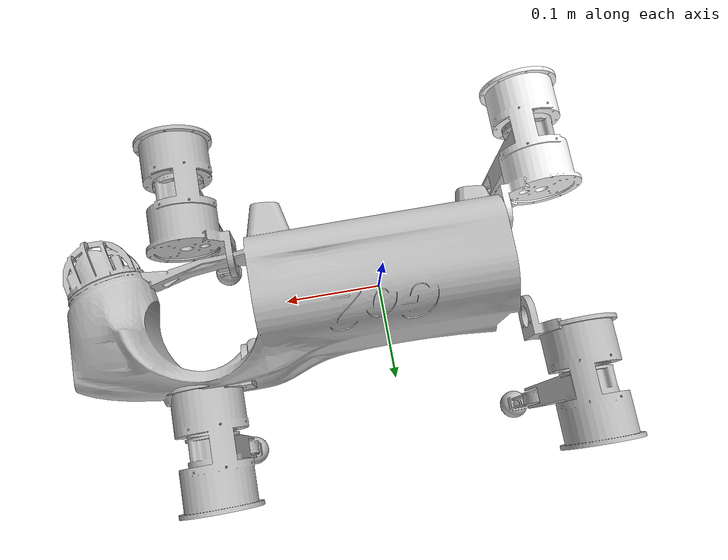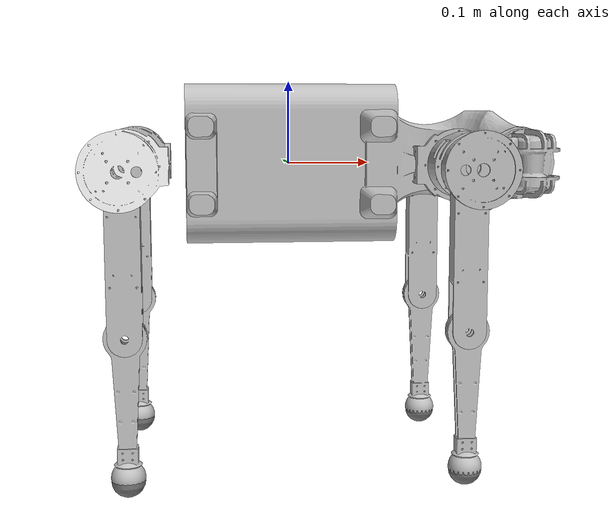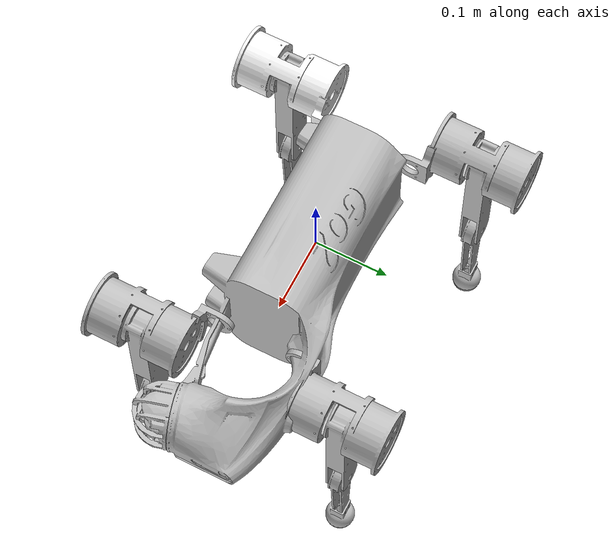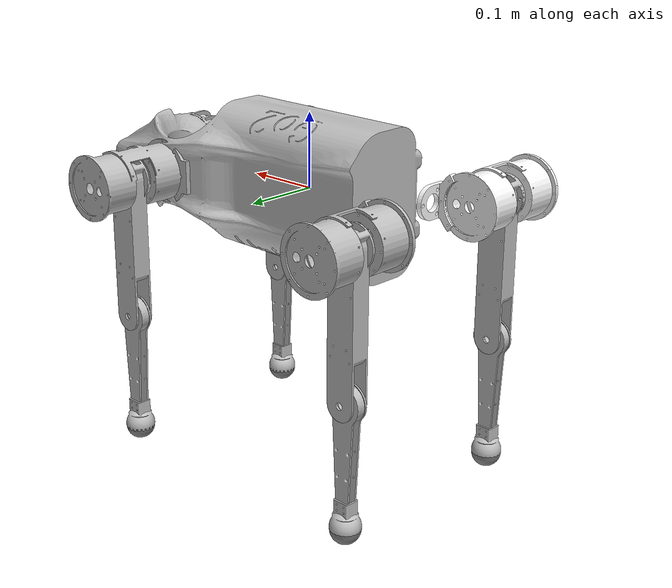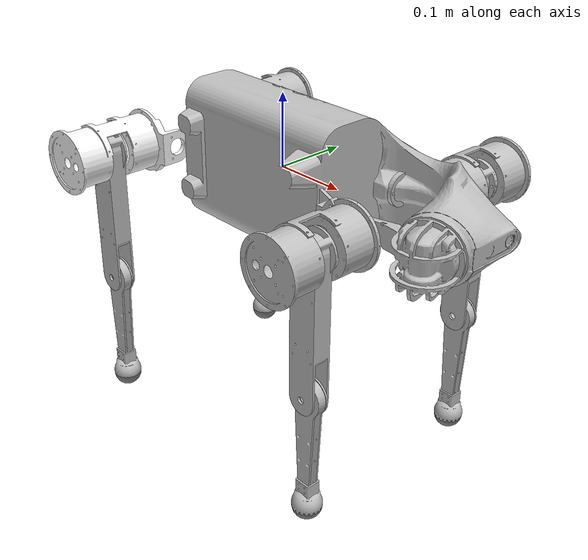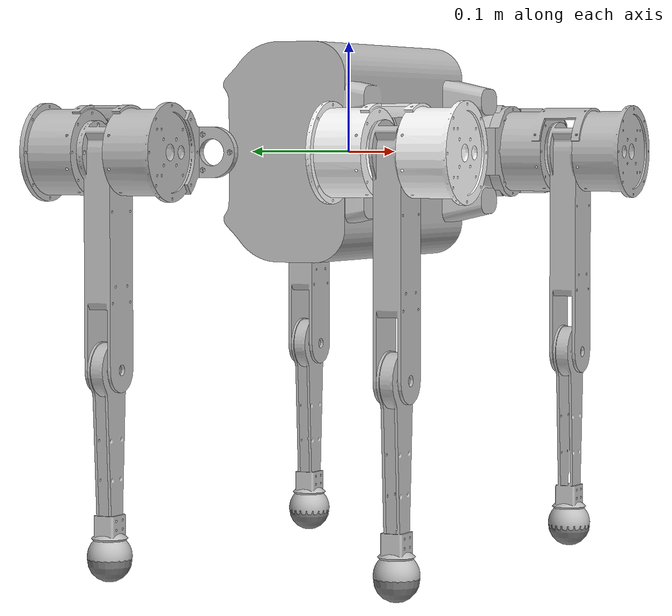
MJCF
<mujoco model="m2_description">
  <compiler angle="radian"/>
  <asset>
    <mesh name="BASE" file="/home/meshin/dev/quadruped/xterra/quadruped_locomotion/src/robots/m2_description/meshes/BASE.STL"/>
    <mesh name="RF_HIP" file="/home/meshin/dev/quadruped/xterra/quadruped_locomotion/src/robots/m2_description/meshes/RF_HIP.STL"/>
    <mesh name="RF_THIGH" file="/home/meshin/dev/quadruped/xterra/quadruped_locomotion/src/robots/m2_description/meshes/RF_THIGH.STL"/>
    <mesh name="RF_SHANK" file="/home/meshin/dev/quadruped/xterra/quadruped_locomotion/src/robots/m2_description/meshes/RF_SHANK.STL"/>
    <mesh name="LF_HIP" file="/home/meshin/dev/quadruped/xterra/quadruped_locomotion/src/robots/m2_description/meshes/LF_HIP.STL"/>
    <mesh name="LF_THIGH" file="/home/meshin/dev/quadruped/xterra/quadruped_locomotion/src/robots/m2_description/meshes/LF_THIGH.STL"/>
    <mesh name="LF_SHANK" file="/home/meshin/dev/quadruped/xterra/quadruped_locomotion/src/robots/m2_description/meshes/LF_SHANK.STL"/>
    <mesh name="RH_HIP" file="/home/meshin/dev/quadruped/xterra/quadruped_locomotion/src/robots/m2_description/meshes/RH_HIP.STL"/>
    <mesh name="RH_THIGH" file="/home/meshin/dev/quadruped/xterra/quadruped_locomotion/src/robots/m2_description/meshes/RH_THIGH.STL"/>
    <mesh name="RH_SHANK" file="/home/meshin/dev/quadruped/xterra/quadruped_locomotion/src/robots/m2_description/meshes/RH_SHANK.STL"/>
    <mesh name="LH_HIP" file="/home/meshin/dev/quadruped/xterra/quadruped_locomotion/src/robots/m2_description/meshes/LH_HIP.STL"/>
    <mesh name="LH_THIGH" file="/home/meshin/dev/quadruped/xterra/quadruped_locomotion/src/robots/m2_description/meshes/LH_THIGH.STL"/>
    <mesh name="LH_SHANK" file="/home/meshin/dev/quadruped/xterra/quadruped_locomotion/src/robots/m2_description/meshes/LH_SHANK.STL"/>
  </asset>
  <worldbody>
    <body name="base">
      <inertial pos="0.0047249 -1.77e-05 0.0011585" quat="-0.000260903 0.717627 0.00016572 0.696428" mass="3.4234" diaginertia="0.0511653 0.0425922 0.0163651"/>
      <freejoint/>
      <geom type="mesh" contype="0" conaffinity="0" group="1" density="0" rgba="0.75294 0.75294 0.75294 1" mesh="BASE"/>
      <geom type="mesh" rgba="0.75294 0.75294 0.75294 1" mesh="BASE"/>
      <body name="fr_abd_l" pos="0.155 -0.06 0">
        <inertial pos="0.0492121 -0.0779589 0.0008006" quat="0.566519 0.534654 -0.463805 0.422002" mass="1.35095" diaginertia="0.00339256 0.00334788 0.00111396"/>
        <joint name="fr_abd_j" pos="0 0 0" axis="1 0 0" range="-4.8 4.8"/>
        <geom type="mesh" contype="0" conaffinity="0" group="1" density="0" rgba="0.75294 0.75294 0.75294 1" mesh="RF_HIP"/>
        <geom type="mesh" rgba="0.75294 0.75294 0.75294 1" mesh="RF_HIP"/>
        <body name="fr_hip_l" pos="0.043751 -0.0796 0">
          <inertial pos="-4.2e-06 0.0008381 -0.0603416" quat="0.707013 0.00792999 -0.00786517 0.707113" mass="0.250246" diaginertia="0.00115964 0.0011437 7.14571e-05"/>
          <joint name="fr_hip_j" pos="0 0 0" axis="0 -1 0" range="-4.0472 4.18879"/>
          <geom type="mesh" contype="0" conaffinity="0" group="1" density="0" rgba="0.75294 0.75294 0.75294 1" mesh="RF_THIGH"/>
          <geom type="mesh" rgba="0.75294 0.75294 0.75294 1" mesh="RF_THIGH"/>
          <body name="fr_knee_l" pos="0 0 -0.1915">
            <inertial pos="-0.0035383 -2.73e-05 -0.068842" quat="0.70615 0.0239868 0.0246387 0.707227" mass="0.20174" diaginertia="0.0010692 0.00104837 3.76251e-05"/>
            <joint name="fr_knee_j" pos="0 0 0" axis="0 -1 0" range="-4.69653 4.9163"/>
            <geom type="mesh" contype="0" conaffinity="0" group="1" density="0" rgba="0.75294 0.75294 0.75294 1" mesh="RF_SHANK"/>
            <geom type="mesh" rgba="0.75294 0.75294 0.75294 1" mesh="RF_SHANK"/>
            <body name="foot_FR" pos="0 0 -0.16693">
              <inertial pos="0.00149798 0 7.77349e-05" mass="0.025" diaginertia="2e-06 2e-06 2e-06"/>
              <joint name="fr_dummy_j" pos="0 0 0" axis="0 0 1"/>
              <geom size="0.02" contype="0" conaffinity="0" group="1" density="0"/>
              <geom size="0.02"/>
            </body>
          </body>
        </body>
      </body>
      <body name="fl_abd_l" pos="0.155 0.06 0">
        <inertial pos="0.0492121 0.0779589 0.0008006" quat="0.534654 0.566519 -0.422002 0.463805" mass="1.35095" diaginertia="0.00339256 0.00334788 0.00111396"/>
        <joint name="fl_abd_j" pos="0 0 0" axis="1 0 0" range="-3.80285 3.80285"/>
        <geom type="mesh" contype="0" conaffinity="0" group="1" density="0" rgba="0.752941 0.752941 0.752941 1" mesh="LF_HIP"/>
        <geom type="mesh" rgba="0.752941 0.752941 0.752941 1" mesh="LF_HIP"/>
        <body name="fl_hip_l" pos="0.043751 0.0796 0">
          <inertial pos="-4.2e-06 -0.0008381 -0.0603416" quat="0.707113 0.00786517 -0.00792999 0.707013" mass="0.250246" diaginertia="0.00115964 0.0011437 7.14571e-05"/>
          <joint name="fl_hip_j" pos="0 0 0" axis="0 1 0" range="-4.0472 4.18879"/>
          <geom type="mesh" contype="0" conaffinity="0" group="1" density="0" rgba="0.752941 0.752941 0.752941 1" mesh="LF_THIGH"/>
          <geom type="mesh" rgba="0.752941 0.752941 0.752941 1" mesh="LF_THIGH"/>
          <body name="fl_knee_a" pos="0 0 -0.1915">
            <inertial pos="-0.0035383 2.73e-05 -0.068842" quat="0.707227 0.0246387 0.0239868 0.70615" mass="0.20174" diaginertia="0.0010692 0.00104837 3.76251e-05"/>
            <joint name="fl_knee_j" pos="0 0 0" axis="0 1 0" range="-4.69653 4.9163"/>
            <geom type="mesh" contype="0" conaffinity="0" group="1" density="0" rgba="0.752941 0.752941 0.752941 1" mesh="LF_SHANK"/>
            <geom type="mesh" rgba="0.752941 0.752941 0.752941 1" mesh="LF_SHANK"/>
            <body name="foot_FL" pos="0 0 -0.16693">
              <inertial pos="0.00149798 0 7.77349e-05" mass="0.025" diaginertia="2e-06 2e-06 2e-06"/>
              <joint name="fl_dummy_j" pos="0 0 0" axis="0 0 1"/>
              <geom size="0.02" contype="0" conaffinity="0" group="1" density="0"/>
              <geom size="0.02"/>
            </body>
          </body>
        </body>
      </body>
      <body name="rr_abd_l" pos="-0.155 -0.06 0">
        <inertial pos="-0.0492121 -0.0779589 0.0008006" quat="0.422002 0.463805 -0.534654 0.566519" mass="1.35095" diaginertia="0.00339256 0.00334788 0.00111396"/>
        <joint name="rr_abd_j" pos="0 0 0" axis="-1 0 0" range="-4.80285 4.80285"/>
        <geom type="mesh" contype="0" conaffinity="0" group="1" density="0" rgba="1 1 1 1" mesh="RH_HIP"/>
        <geom type="mesh" rgba="1 1 1 1" mesh="RH_HIP"/>
        <body name="rr_hip_l" pos="-0.043751 -0.0796 0">
          <inertial pos="4.2e-06 0.0008381 -0.0603416" quat="0.707113 -0.00786517 0.00792999 0.707013" mass="0.250246" diaginertia="0.00115964 0.0011437 7.14571e-05"/>
          <joint name="rr_hip_j" pos="0 0 0" axis="0 -1 0" range="-4.0472 4.18879"/>
          <geom type="mesh" contype="0" conaffinity="0" group="1" density="0" rgba="0.752941 0.752941 0.752941 1" mesh="RH_THIGH"/>
          <geom type="mesh" rgba="0.752941 0.752941 0.752941 1" mesh="RH_THIGH"/>
          <body name="rr_knee_l" pos="0 0 -0.1915">
            <inertial pos="0.0035383 2.73e-05 -0.068842" quat="0.709529 0.0238733 0.0247487 0.703836" mass="0.20174" diaginertia="0.0010692 0.00104837 3.76251e-05"/>
            <joint name="rr_knee_j" pos="0 0 0" axis="0 -1 0" range="-4.69653 4.9163"/>
            <geom type="mesh" contype="0" conaffinity="0" group="1" density="0" rgba="0.752941 0.752941 0.752941 1" mesh="RH_SHANK"/>
            <geom type="mesh" rgba="0.752941 0.752941 0.752941 1" mesh="RH_SHANK"/>
            <body name="foot_RR" pos="0 0 -0.16802">
              <inertial pos="0.00149798 0 7.77349e-05" mass="0.025" diaginertia="2e-06 2e-06 2e-06"/>
              <joint name="rr_dummy_j" pos="0 0 0" axis="0 0 1"/>
              <geom size="0.02" contype="0" conaffinity="0" group="1" density="0"/>
              <geom size="0.02"/>
            </body>
          </body>
        </body>
      </body>
      <body name="rl_abd_l" pos="-0.155 0.06 0">
        <inertial pos="-0.0492121 0.0779589 0.0008006" quat="0.463805 0.422002 -0.566519 0.534654" mass="1.35095" diaginertia="0.00339256 0.00334788 0.00111396"/>
        <joint name="rl_abd_j" pos="0 0 0" axis="-1 0 0" range="-4.80285 4.80285"/>
        <geom type="mesh" contype="0" conaffinity="0" group="1" density="0" rgba="0.752941 0.752941 0.752941 1" mesh="LH_HIP"/>
        <geom type="mesh" rgba="0.752941 0.752941 0.752941 1" mesh="LH_HIP"/>
        <body name="rl_hip_l" pos="-0.043751 0.0796 0">
          <inertial pos="-4.2e-06 -0.0008381 -0.0603416" quat="0.707013 0.00792999 -0.00786517 0.707113" mass="0.250246" diaginertia="0.00115964 0.0011437 7.14571e-05"/>
          <joint name="rl_hip_j" pos="0 0 0" axis="0 1 0" range="-4.0472 4.18879"/>
          <geom type="mesh" contype="0" conaffinity="0" group="1" density="0" rgba="0.752941 0.752941 0.752941 1" mesh="LH_THIGH"/>
          <geom type="mesh" rgba="0.752941 0.752941 0.752941 1" mesh="LH_THIGH"/>
          <body name="rl_knee_l" pos="0 0 -0.1915">
            <inertial pos="0.0035383 -2.73e-05 -0.068842" quat="0.703836 0.0247487 0.0238733 0.709529" mass="0.20174" diaginertia="0.0010692 0.00104837 3.76251e-05"/>
            <joint name="rl_knee_j" pos="0 0 0" axis="0 1 0" range="-4.69653 4.9163"/>
            <geom type="mesh" contype="0" conaffinity="0" group="1" density="0" rgba="0.752941 0.752941 0.752941 1" mesh="LH_SHANK"/>
            <geom type="mesh" rgba="0.752941 0.752941 0.752941 1" mesh="LH_SHANK"/>
            <body name="foot_RL" pos="0 0 -0.16802">
              <inertial pos="0.00149798 0 7.77349e-05" mass="0.025" diaginertia="2e-06 2e-06 2e-06"/>
              <joint name="rl_dummy_j" pos="0 0 0" axis="0 0 1"/>
              <geom size="0.02" contype="0" conaffinity="0" group="1" density="0"/>
              <geom size="0.02"/>
            </body>
          </body>
        </body>
      </body>
    </body>
  </worldbody>

</mujoco>
